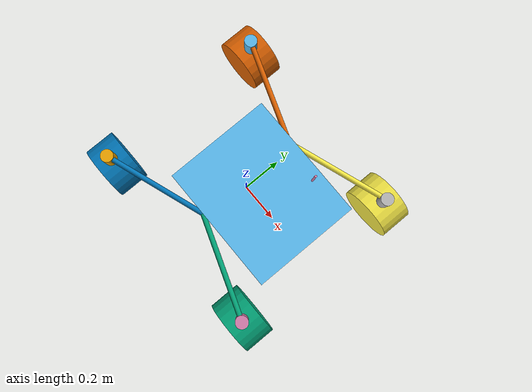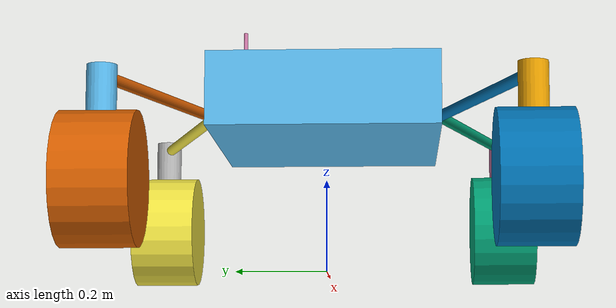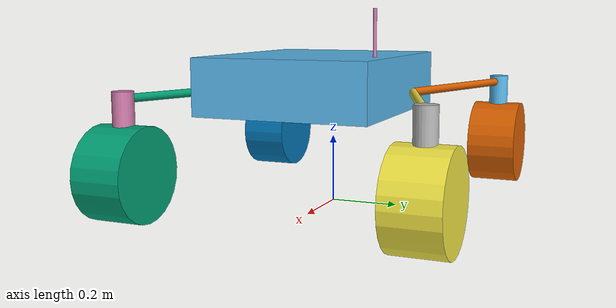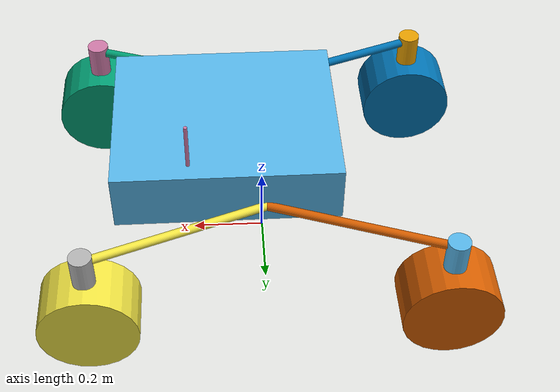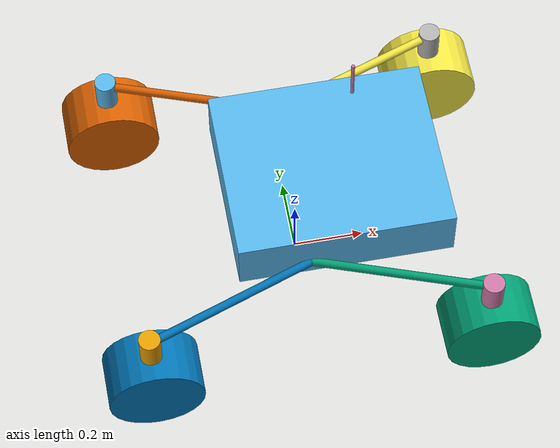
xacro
<?xml version="1.0"?>
<robot name="astra" xmlns:xacro="http://ros.org/wiki/xacro">

<!-- LINKS -->

  <xacro:macro name="inertial_cylinder" params="mass length radius *origin">
    <inertial>
        <xacro:insert_block name="origin"/>
        <mass value="${mass}" />
        <inertia ixx="${(1/12) * mass * (3*radius*radius + length*length)}" ixy="0.0" ixz="0.0"
                iyy="${(1/12) * mass * (3*radius*radius + length*length)}" iyz="0.0"
                izz="${(1/2) * mass * (radius*radius)}" />
    </inertial>
  </xacro:macro>

  <link name="base_link"></link>

  <link name="chassis_link">
    <visual>
      <geometry>
        <box size="0.6 0.5 0.16"/>
      </geometry>
      <origin xyz="0.1 0 0.03"/>
    </visual>
  </link>

  <!-- LEGS -->

  <link name="leg_front_right">
    <visual>
      <geometry>
        <cylinder length="0.5" radius="0.012"/>
      </geometry>
      <origin xyz="0.236 -0.0835 0" rpy="1.57075 0 1.23073"/>
    </visual>
  </link>

  <link name="leg_front_left">
    <visual>
      <geometry>
        <cylinder length="0.5" radius="0.012"/>
      </geometry>
      <origin xyz="0.236 0.0835 0" rpy="-1.57075 0 -1.23073"/>
    </visual>
  </link>

  <link name="leg_rear_right">
    <visual>
      <geometry>
        <cylinder length="0.5" radius="0.012"/>
      </geometry>
      <origin xyz="-0.236 -0.0835 0" rpy="1.57075 0 -1.23073"/>
    </visual>
  </link>

  <link name="leg_rear_left">
    <visual>
      <geometry>
        <cylinder length="0.5" radius="0.012"/>
      </geometry>
      <origin xyz="-0.236 0.0835 0" rpy="-1.57075 0 1.23073"/>
    </visual>
  </link>

  <!-- SCIENCE BAY -->

  <!-- THING HOLDING WHEELS TO LEGS -->

  <link name="holder_front_right">
    <visual>
      <geometry>
        <cylinder length="0.101" radius="0.03"/>
      </geometry>
      <origin xyz="0 0 -0.03"/>
    </visual>
  </link>

  <link name="holder_front_left">
    <visual>
      <geometry>
        <cylinder length="0.101" radius="0.03"/>
      </geometry>
      <origin xyz="0 0 -0.03"/>
    </visual>
  </link>

  <link name="holder_rear_right">
    <visual>
      <geometry>
        <cylinder length="0.101" radius="0.03"/>
      </geometry>
      <origin xyz="0 0 -0.03"/>
    </visual>
  </link>

  <link name="holder_rear_left">
    <visual>
      <geometry>
        <cylinder length="0.101" radius="0.03"/>
      </geometry>
      <origin xyz="0 0 -0.03"/>
    </visual>
  </link>

  <!-- WHEELS -->

  <link name="wheel_front_right">
    <visual>
      <geometry>
        <cylinder length="0.15" radius="0.133"/>
      </geometry>
      <origin xyz="0 0 0" rpy="1.57075 0 0"/>
    </visual>
  </link>

  <link name="wheel_front_left">
    <visual>
      <geometry>
        <cylinder length="0.15" radius="0.133"/>
      </geometry>
      <origin xyz="0 0 0" rpy="1.57075 0 0"/>
    </visual>
  </link>

  <link name="wheel_rear_right">
    <visual>
      <geometry>
        <cylinder length="0.15" radius="0.133"/>
      </geometry>
      <origin xyz="0 0 0" rpy="1.57075 0 0"/>
    </visual>
  </link>

  <link name="wheel_rear_left">
    <visual>
      <geometry>
        <cylinder length="0.15" radius="0.133"/>
      </geometry>
      <origin xyz="0 0 0" rpy="1.57075 0 0"/>
    </visual>
  </link>

<!-- JOINTS -->
  <joint name="base_link_joint" type="fixed">
    <parent link="base_link"/>
    <child link="chassis_link" />
    <origin xyz="0 0 .343" rpy="0 0 0"/>
  </joint>

  <joint name="chassis_to_leg_front_right_joint" type="fixed">
    <parent link="chassis_link"/>
    <child link="leg_front_right"/>
    <origin xyz="0 -0.25 0" rpy="0 0 0"/>
  </joint>

  <joint name="chassis_to_leg_front_left_joint" type="fixed">
    <parent link="chassis_link"/>
    <child link="leg_front_left"/>
    <origin xyz="0 0.25 0" rpy="0 0 0"/>
  </joint>

  <joint name="chassis_to_leg_rear_right_joint" type="fixed">
    <parent link="chassis_link"/>
    <child link="leg_rear_right"/>
    <origin xyz="0 -0.25 0" rpy="0 0 0"/>
  </joint>

  <joint name="chassis_to_leg_rear_left_joint" type="fixed">
    <parent link="chassis_link"/>
    <child link="leg_rear_left"/>
    <origin xyz="0 0.25 0" rpy="0 0 0"/>
  </joint>
  <!-- oak_right_camera_optical_frame -->

  <joint name="leg_front_right_to_holder_front_right_joint" type="fixed">
    <parent link="leg_front_right"/>
    <child link="holder_front_right"/>
    <origin xyz="0.472 -0.167 0" rpy="0 0 0"/>
  </joint>

  <joint name="leg_front_left_to_holder_front_left_joint" type="fixed">
    <parent link="leg_front_left"/>
    <child link="holder_front_left"/>
    <origin xyz="0.472 0.167 0" rpy="0 0 0"/>
  </joint>

  <joint name="leg_rear_right_to_holder_rear_right_joint" type="fixed">
    <parent link="leg_rear_right"/>
    <child link="holder_rear_right"/>
    <origin xyz="-0.472 -0.167 0" rpy="0 0 0"/>
  </joint>

  <joint name="leg_rear_left_to_holder_rear_left_joint" type="fixed">
    <parent link="leg_rear_left"/>
    <child link="holder_rear_left"/>
    <origin xyz="-0.472 0.167 0" rpy="0 0 0"/>
  </joint>

  <joint name="holder_front_right_to_wheel_front_right_joint" type="fixed">
    <parent link="holder_front_right"/>
    <child link="wheel_front_right"/>
    <origin xyz="0 0 -0.2035" rpy="0 0 0"/>
  </joint>

  <joint name="holder_front_left_to_wheel_front_left_joint" type="fixed">
    <parent link="holder_front_left"/>
    <child link="wheel_front_left"/>
    <origin xyz="0 0 -0.2035" rpy="0 0 0"/>
  </joint>

  <joint name="holder_rear_right_to_wheel_rear_right_joint" type="fixed">
    <parent link="holder_rear_right"/>
    <child link="wheel_rear_right"/>
    <origin xyz="0 0 -0.2035" rpy="0 0 0"/>
  </joint>

  <joint name="holder_rear_left_to_wheel_rear_left_joint" type="fixed">
    <parent link="holder_rear_left"/>
    <child link="wheel_rear_left"/>
    <origin xyz="0 0 -0.2035" rpy="0 0 0"/>
  </joint>

  <joint name="chassis_to_lidar_axis" type="fixed">
    <origin xyz="0.2 0.20 0.12" rpy="0 0 0"/>
    <parent link="chassis_link"/>
    <child link="lidar_axis"/>
  </joint>

  <link name="lidar_axis">
    <visual>
      <geometry>
        <cylinder length="0.24" radius="0.005"/>
      </geometry>
    </visual>
    <collision>
      <geometry>
        <cylinder length="0.24" radius="0.005"/>
      </geometry>
    </collision>
    <xacro:inertial_cylinder mass="0.25" length="0.24" radius="0.005">
      <origin xyz="0 0 0" />
    </xacro:inertial_cylinder>
  </link>

    <joint name="lidar_sensor_joint" type="fixed">
      <origin xyz="0.0 0 0.145" rpy="0 0 ${pi}"/>
      <parent link="lidar_axis"/>
      <child link="lidar_sensor_frame"/>
    </joint>

  <joint name="lidar_laser_joint" type="fixed">
    <origin xyz="0.0 0 -0.03618" rpy="0 0 ${pi}"/>
    <parent link="lidar_sensor_frame"/>
    <child link="lidar_link"/>
  </joint>

    <link name="lidar_link"></link>

      <link name="lidar_sensor_frame"></link>

      <joint name="lidar_imu_joint" type="fixed">
        <origin xyz="0.0 0 -0.03618" rpy="0 0 ${pi}"/>
        <parent link="lidar_sensor_frame"/>
        <child link="lidar_imu_frame"/>
      </joint>

      <link name="lidar_imu_frame"></link>

</robot>
